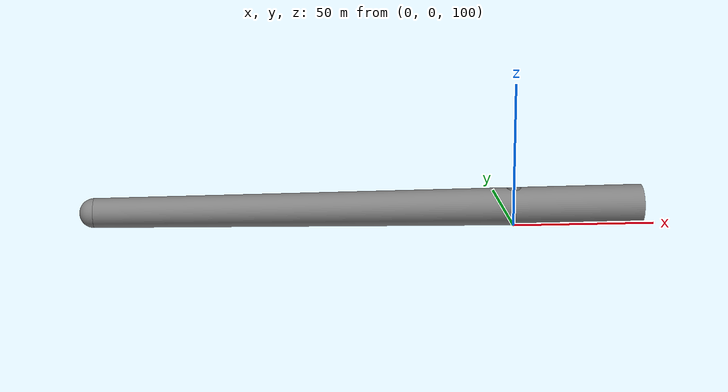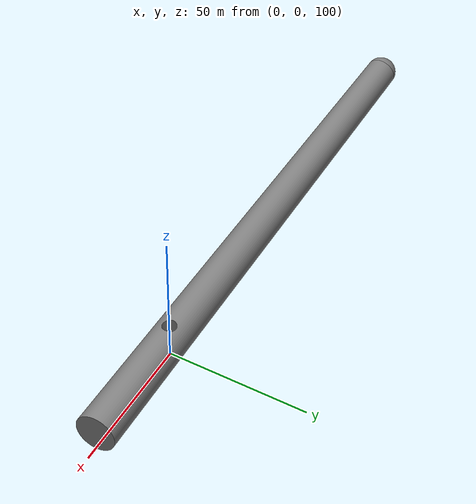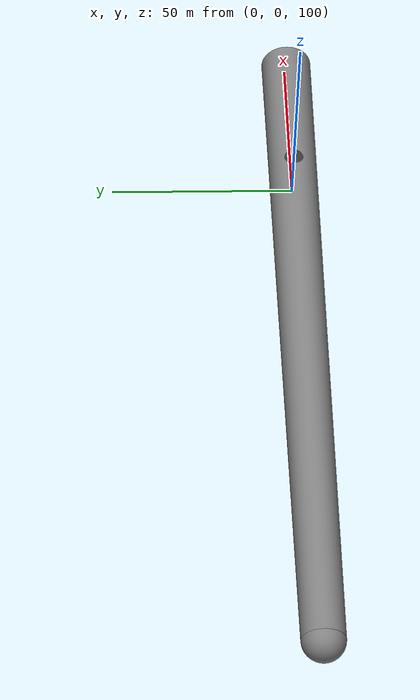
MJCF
<mujoco model="cut_rod">
  <default>
    <default class="visual">
      <geom group="2" type="mesh" contype="0" conaffinity="0"/>
    </default>
    <default class="collision">
      <geom group="3" type="mesh"/>
    </default>
  </default>
  <asset>
    <mesh file="cut_rod_0.obj"/>
    <mesh file="cut_rod_1.obj"/>
    <mesh file="cut_rod_2.obj"/>
    <mesh file="cut_rod_collision_0.obj"/>
    <mesh file="cut_rod_collision_1.obj"/>
  </asset>
  <worldbody>
    <body name="cut_rod">
      <geom mesh="cut_rod_0" class="visual"/>
      <geom mesh="cut_rod_1" class="visual"/>
      <geom mesh="cut_rod_2" class="visual"/>
      <geom mesh="cut_rod_collision_0" rgba="0.8449083522441464 0.4857825111552856 0.025281120848835714 1" class="collision"/>
      <geom mesh="cut_rod_collision_1" rgba="0.4714726688292209 0.16294631791980063 0.12045349352651591 1" class="collision"/>
    </body>
  </worldbody>
</mujoco>
